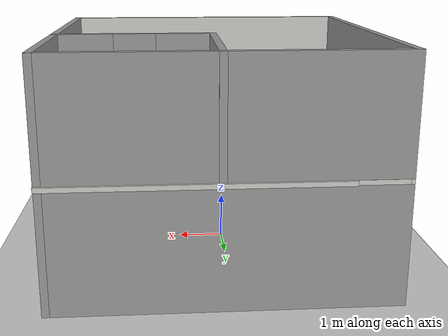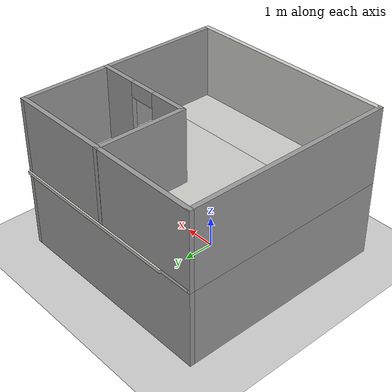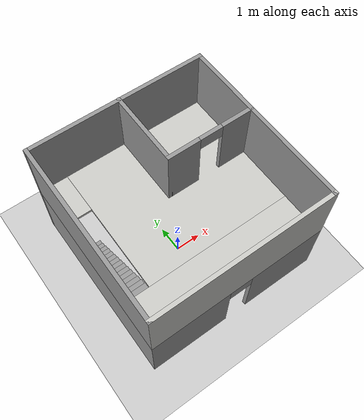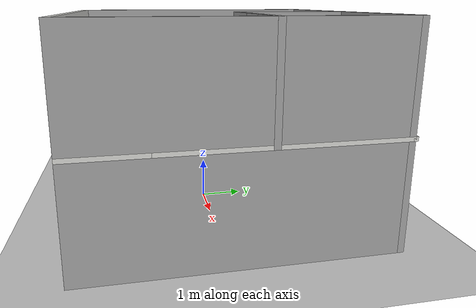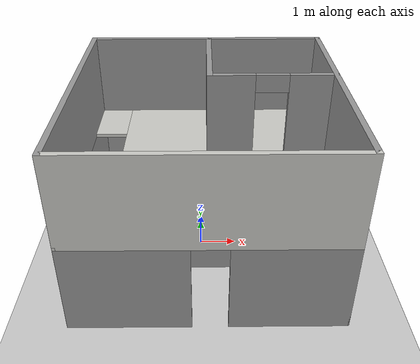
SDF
<sdf version="1.6">
 <world name="default">
  <light name="sun" type="directional">
   <pose>0 0 10 0 -0 0</pose>
   <diffuse>0.8 0.8 0.8 1</diffuse>
   <specular>0.1 0.1 0.1 1</specular>
   <attenuation>
    <range>1000</range>
    <constant>0.9</constant>
    <linear>0.01</linear>
    <quadratic>0.001</quadratic>
   </attenuation>
   <direction>-0.5 0.5 -1</direction>
  </light>
  <model name="ground_plane">
   <static>1</static>
   <link name="link">
    <collision name="collision">
     <geometry><plane><normal>0 0 1</normal><size>100 100</size></plane></geometry>
     <surface><friction><ode><mu>100</mu><mu2>50</mu2></ode></friction></surface>
    </collision>
    <visual name="visual">
     <cast_shadows>0</cast_shadows>
     <geometry><plane><normal>0 0 1</normal><size>100 100</size></plane></geometry>
     <material>
      <script><uri>file://media/materials/scripts/gazebo.material</uri><name>Gazebo/Grey</name></script>
     </material>
    </visual>
   </link>
  </model>
  <gravity>0 0 -9.8</gravity>
  <magnetic_field>6e-06 2.3e-05 -4.2e-05</magnetic_field>
  <atmosphere type="adiabatic"/>
  <physics name="default_physics" default="0" type="ode">
   <max_step_size>0.001</max_step_size>
   <real_time_factor>1</real_time_factor>
   <real_time_update_rate>1000</real_time_update_rate>
  </physics>
  <scene><ambient>0.4 0.4 0.4 1</ambient><background>0.7 0.7 0.7 1</background><shadows>1</shadows></scene>
  <spherical_coordinates>
   <surface_model>EARTH_WGS84</surface_model>
   <latitude_deg>0</latitude_deg>
   <longitude_deg>0</longitude_deg>
   <elevation>0</elevation>
   <heading_deg>0</heading_deg>
  </spherical_coordinates>
  <model name="Square_Building">
   <pose>0.185076 0.271864 0 0 -0 0</pose>
   <link name="Floor_1">
    <pose>0 0 2.5 0 -0 0</pose>
    <visual name="Floor_1_Visual_0">
     <pose>-3.46049 0 0.05 0 -0 0</pose>
     <geometry><box><size>0.079016 7.0068 0.1</size></box></geometry>
     <material>
      <script><uri>file://media/materials/scripts/gazebo.material</uri><name>Gazebo/CeilingTiled</name></script>
      <ambient>1 0.764706 0.305882 1</ambient>
     </material>
    </visual>
    <collision name="Floor_1_Collision_0">
     <geometry><box><size>0.079016 7.0068 0.1</size></box></geometry>
     <pose>-3.46049 0 0.05 0 -0 0</pose>
    </collision>
    <visual name="Floor_1_Visual_1">
     <pose>0.039508 -2.65084 0.05 0 -0 0</pose>
     <geometry><box><size>6.92098 1.70511 0.1</size></box></geometry>
     <material>
      <script><uri>file://media/materials/scripts/gazebo.material</uri><name>Gazebo/CeilingTiled</name></script>
      <ambient>1 0.764706 0.305882 1</ambient>
     </material>
    </visual>
    <collision name="Floor_1_Collision_1">
     <geometry><box><size>6.92098 1.70511 0.1</size></box></geometry>
     <pose>0.039508 -2.65084 0.05 0 -0 0</pose>
    </collision>
    <visual name="Floor_1_Visual_2">
     <pose>0.539508 0.852556 0.05 0 -0 0</pose>
     <geometry><box><size>5.92098 5.30168 0.1</size></box></geometry>
     <material>
      <script><uri>file://media/materials/scripts/gazebo.material</uri><name>Gazebo/CeilingTiled</name></script>
      <ambient>1 0.764706 0.305882 1</ambient>
     </material>
    </visual>
    <collision name="Floor_1_Collision_2">
     <geometry><box><size>5.92098 5.30168 0.1</size></box></geometry>
     <pose>0.539508 0.852556 0.05 0 -0 0</pose>
    </collision>
    <visual name="Floor_1_Visual_3">
     <pose>-2.92098 2.60256 0.05 0 -0 0</pose>
     <geometry><box><size>1 1.80168 0.1</size></box></geometry>
     <material>
      <script><uri>file://media/materials/scripts/gazebo.material</uri><name>Gazebo/CeilingTiled</name></script>
      <ambient>1 0.764706 0.305882 1</ambient>
     </material>
    </visual>
    <collision name="Floor_1_Collision_3">
     <geometry><box><size>1 1.80168 0.1</size></box></geometry>
     <pose>-2.92098 2.60256 0.05 0 -0 0</pose>
    </collision>
    <visual name="Floor_1_Visual_4">
     <pose>0.539508 3.5034 0.05 0 -0 0</pose>
     <geometry><box><size>5.92098 0.1 0.1</size></box></geometry>
     <material>
      <script><uri>file://media/materials/scripts/gazebo.material</uri><name>Gazebo/CeilingTiled</name></script>
      <ambient>1 0.764706 0.305882 1</ambient>
     </material>
    </visual>
    <collision name="Floor_1_Collision_4">
     <geometry><box><size>5.92098 0.1 0.1</size></box></geometry>
     <pose>0.539508 3.5034 0.05 0 -0 0</pose>
    </collision>
   </link>
   <link name="Stairs_1">
    <visual name="Stairs_1_Visual_0">
     <pose>-2.92098 1.58505 0.083333 0 -0 0</pose>
     <geometry><box><size>1 0.233333 0.166667</size></box></geometry>
     <material>
      <script><uri>file://media/materials/scripts/gazebo.material</uri><name>Gazebo/Grey</name></script>
      <ambient>1 1 1 1</ambient>
     </material>
    </visual>
    <collision name="Stairs_1_Collision_0">
     <geometry><box><size>1 0.233333 0.166667</size></box></geometry>
     <pose>-2.92098 1.58505 0.083333 0 -0 0</pose>
    </collision>
    <visual name="Stairs_1_Visual_1">
     <pose>-2.92098 1.35171 0.25 0 -0 0</pose>
     <geometry><box><size>1 0.233333 0.166667</size></box></geometry>
     <material>
      <script><uri>file://media/materials/scripts/gazebo.material</uri><name>Gazebo/Grey</name></script>
      <ambient>1 1 1 1</ambient>
     </material>
    </visual>
    <collision name="Stairs_1_Collision_1">
     <geometry><box><size>1 0.233333 0.166667</size></box></geometry>
     <pose>-2.92098 1.35171 0.25 0 -0 0</pose>
    </collision>
    <visual name="Stairs_1_Visual_2">
     <pose>-2.92098 1.11838 0.416667 0 -0 0</pose>
     <geometry><box><size>1 0.233333 0.166667</size></box></geometry>
     <material>
      <script><uri>file://media/materials/scripts/gazebo.material</uri><name>Gazebo/Grey</name></script>
      <ambient>1 1 1 1</ambient>
     </material>
    </visual>
    <collision name="Stairs_1_Collision_2">
     <geometry><box><size>1 0.233333 0.166667</size></box></geometry>
     <pose>-2.92098 1.11838 0.416667 0 -0 0</pose>
    </collision>
    <visual name="Stairs_1_Visual_3">
     <pose>-2.92098 0.885047 0.583333 0 -0 0</pose>
     <geometry><box><size>1 0.233333 0.166667</size></box></geometry>
     <material>
      <script><uri>file://media/materials/scripts/gazebo.material</uri><name>Gazebo/Grey</name></script>
      <ambient>1 1 1 1</ambient>
     </material>
    </visual>
    <collision name="Stairs_1_Collision_3">
     <geometry><box><size>1 0.233333 0.166667</size></box></geometry>
     <pose>-2.92098 0.885047 0.583333 0 -0 0</pose>
    </collision>
    <visual name="Stairs_1_Visual_4">
     <pose>-2.92098 0.651714 0.75 0 -0 0</pose>
     <geometry><box><size>1 0.233333 0.166667</size></box></geometry>
     <material>
      <script><uri>file://media/materials/scripts/gazebo.material</uri><name>Gazebo/Grey</name></script>
      <ambient>1 1 1 1</ambient>
     </material>
    </visual>
    <collision name="Stairs_1_Collision_4">
     <geometry><box><size>1 0.233333 0.166667</size></box></geometry>
     <pose>-2.92098 0.651714 0.75 0 -0 0</pose>
    </collision>
    <visual name="Stairs_1_Visual_5">
     <pose>-2.92098 0.41838 0.916667 0 -0 0</pose>
     <geometry><box><size>1 0.233333 0.166667</size></box></geometry>
     <material>
      <script><uri>file://media/materials/scripts/gazebo.material</uri><name>Gazebo/Grey</name></script>
      <ambient>1 1 1 1</ambient>
     </material>
    </visual>
    <collision name="Stairs_1_Collision_5">
     <geometry><box><size>1 0.233333 0.166667</size></box></geometry>
     <pose>-2.92098 0.41838 0.916667 0 -0 0</pose>
    </collision>
    <visual name="Stairs_1_Visual_6">
     <pose>-2.92098 0.185047 1.08333 0 -0 0</pose>
     <geometry><box><size>1 0.233333 0.166667</size></box></geometry>
     <material>
      <script><uri>file://media/materials/scripts/gazebo.material</uri><name>Gazebo/Grey</name></script>
      <ambient>1 1 1 1</ambient>
     </material>
    </visual>
    <collision name="Stairs_1_Collision_6">
     <geometry><box><size>1 0.233333 0.166667</size></box></geometry>
     <pose>-2.92098 0.185047 1.08333 0 -0 0</pose>
    </collision>
    <visual name="Stairs_1_Visual_7">
     <pose>-2.92098 -0.048286 1.25 0 -0 0</pose>
     <geometry><box><size>1 0.233333 0.166667</size></box></geometry>
     <material>
      <script><uri>file://media/materials/scripts/gazebo.material</uri><name>Gazebo/Grey</name></script>
      <ambient>1 1 1 1</ambient>
     </material>
    </visual>
    <collision name="Stairs_1_Collision_7">
     <geometry><box><size>1 0.233333 0.166667</size></box></geometry>
     <pose>-2.92098 -0.048286 1.25 0 -0 0</pose>
    </collision>
    <visual name="Stairs_1_Visual_8">
     <pose>-2.92098 -0.28162 1.41667 0 -0 0</pose>
     <geometry><box><size>1 0.233333 0.166667</size></box></geometry>
     <material>
      <script><uri>file://media/materials/scripts/gazebo.material</uri><name>Gazebo/Grey</name></script>
      <ambient>1 1 1 1</ambient>
     </material>
    </visual>
    <collision name="Stairs_1_Collision_8">
     <geometry><box><size>1 0.233333 0.166667</size></box></geometry>
     <pose>-2.92098 -0.28162 1.41667 0 -0 0</pose>
    </collision>
    <visual name="Stairs_1_Visual_9">
     <pose>-2.92098 -0.514953 1.58333 0 -0 0</pose>
     <geometry><box><size>1 0.233333 0.166667</size></box></geometry>
     <material>
      <script><uri>file://media/materials/scripts/gazebo.material</uri><name>Gazebo/Grey</name></script>
      <ambient>1 1 1 1</ambient>
     </material>
    </visual>
    <collision name="Stairs_1_Collision_9">
     <geometry><box><size>1 0.233333 0.166667</size></box></geometry>
     <pose>-2.92098 -0.514953 1.58333 0 -0 0</pose>
    </collision>
    <visual name="Stairs_1_Visual_10">
     <pose>-2.92098 -0.748286 1.75 0 -0 0</pose>
     <geometry><box><size>1 0.233333 0.166667</size></box></geometry>
     <material>
      <script><uri>file://media/materials/scripts/gazebo.material</uri><name>Gazebo/Grey</name></script>
      <ambient>1 1 1 1</ambient>
     </material>
    </visual>
    <collision name="Stairs_1_Collision_10">
     <geometry><box><size>1 0.233333 0.166667</size></box></geometry>
     <pose>-2.92098 -0.748286 1.75 0 -0 0</pose>
    </collision>
    <visual name="Stairs_1_Visual_11">
     <pose>-2.92098 -0.98162 1.91667 0 -0 0</pose>
     <geometry><box><size>1 0.233333 0.166667</size></box></geometry>
     <material>
      <script><uri>file://media/materials/scripts/gazebo.material</uri><name>Gazebo/Grey</name></script>
      <ambient>1 1 1 1</ambient>
     </material>
    </visual>
    <collision name="Stairs_1_Collision_11">
     <geometry><box><size>1 0.233333 0.166667</size></box></geometry>
     <pose>-2.92098 -0.98162 1.91667 0 -0 0</pose>
    </collision>
    <visual name="Stairs_1_Visual_12">
     <pose>-2.92098 -1.21495 2.08333 0 -0 0</pose>
     <geometry><box><size>1 0.233333 0.166667</size></box></geometry>
     <material>
      <script><uri>file://media/materials/scripts/gazebo.material</uri><name>Gazebo/Grey</name></script>
      <ambient>1 1 1 1</ambient>
     </material>
    </visual>
    <collision name="Stairs_1_Collision_12">
     <geometry><box><size>1 0.233333 0.166667</size></box></geometry>
     <pose>-2.92098 -1.21495 2.08333 0 -0 0</pose>
    </collision>
    <visual name="Stairs_1_Visual_13">
     <pose>-2.92098 -1.44829 2.25 0 -0 0</pose>
     <geometry><box><size>1 0.233333 0.166667</size></box></geometry>
     <material>
      <script><uri>file://media/materials/scripts/gazebo.material</uri><name>Gazebo/Grey</name></script>
      <ambient>1 1 1 1</ambient>
     </material>
    </visual>
    <collision name="Stairs_1_Collision_13">
     <geometry><box><size>1 0.233333 0.166667</size></box></geometry>
     <pose>-2.92098 -1.44829 2.25 0 -0 0</pose>
    </collision>
    <visual name="Stairs_1_Visual_14">
     <pose>-2.92098 -1.68162 2.41667 0 -0 0</pose>
     <geometry><box><size>1 0.233333 0.166667</size></box></geometry>
     <material>
      <script><uri>file://media/materials/scripts/gazebo.material</uri><name>Gazebo/Grey</name></script>
      <ambient>1 1 1 1</ambient>
     </material>
    </visual>
    <collision name="Stairs_1_Collision_14">
     <geometry><box><size>1 0.233333 0.166667</size></box></geometry>
     <pose>-2.92098 -1.68162 2.41667 0 -0 0</pose>
    </collision>
   </link>
   <link name="Wall_11">
    <collision name="Wall_11_Collision">
     <geometry><box><size>7 0.15 2.5</size></box></geometry>
     <pose>0 0 1.25 0 -0 0</pose>
    </collision>
    <visual name="Wall_11_Visual">
     <pose>0 0 1.25 0 -0 0</pose>
     <geometry><box><size>7 0.15 2.5</size></box></geometry>
     <material>
      <script><uri>file://media/materials/scripts/gazebo.material</uri><name>Gazebo/Grey</name></script>
      <ambient>1 1 1 1</ambient>
     </material>
    </visual>
    <pose>3.42482 -0.003399 0 0 -0 1.5708</pose>
   </link>
   <link name="Wall_12">
    <collision name="Wall_12_Collision">
     <geometry><box><size>7 0.15 2.5</size></box></geometry>
     <pose>0 0 1.25 0 -0 0</pose>
    </collision>
    <visual name="Wall_12_Visual">
     <pose>0 0 1.25 0 -0 0</pose>
     <geometry><box><size>7 0.15 2.5</size></box></geometry>
     <material>
      <script><uri>file://media/materials/scripts/gazebo.material</uri><name>Gazebo/Grey</name></script>
      <ambient>1 1 1 1</ambient>
     </material>
    </visual>
    <pose>-0.000183 3.4216 0 0 -0 3.14159</pose>
   </link>
   <link name="Wall_13">
    <collision name="Wall_13_Collision">
     <geometry><box><size>7 0.15 2.5</size></box></geometry>
     <pose>0 0 1.25 0 -0 0</pose>
    </collision>
    <visual name="Wall_13_Visual">
     <pose>0 0 1.25 0 -0 0</pose>
     <geometry><box><size>7 0.15 2.5</size></box></geometry>
     <material>
      <script><uri>file://media/materials/scripts/gazebo.material</uri><name>Gazebo/Grey</name></script>
      <ambient>1 1 1 1</ambient>
     </material>
    </visual>
    <pose>-3.42518 -0.003399 0 0 0 -1.5708</pose>
   </link>
   <link name="Wall_19">
    <collision name="Wall_19_Collision">
     <geometry><box><size>7 0.15 2.5</size></box></geometry>
     <pose>0 0 1.25 0 -0 0</pose>
    </collision>
    <visual name="Wall_19_Visual">
     <pose>0 0 1.25 0 -0 0</pose>
     <geometry><box><size>7 0.15 2.5</size></box></geometry>
     <material>
      <script><uri>file://media/materials/scripts/gazebo.material</uri><name>Gazebo/CeilingTiled</name></script>
      <ambient>1 1 1 1</ambient>
     </material>
    </visual>
    <pose>-0.000183 -3.4284 2.5 0 -0 0</pose>
   </link>
   <link name="Wall_20">
    <collision name="Wall_20_Collision">
     <geometry><box><size>7 0.15 2.5</size></box></geometry>
     <pose>0 0 1.25 0 -0 0</pose>
    </collision>
    <visual name="Wall_20_Visual">
     <pose>0 0 1.25 0 -0 0</pose>
     <geometry><box><size>7 0.15 2.5</size></box></geometry>
     <material>
      <script><uri>file://media/materials/scripts/gazebo.material</uri><name>Gazebo/Grey</name></script>
      <ambient>1 1 1 1</ambient>
     </material>
    </visual>
    <pose>3.42482 -0.003399 2.5 0 -0 1.5708</pose>
   </link>
   <link name="Wall_21">
    <collision name="Wall_21_Collision">
     <geometry><box><size>7 0.15 2.5</size></box></geometry>
     <pose>0 0 1.25 0 -0 0</pose>
    </collision>
    <visual name="Wall_21_Visual">
     <pose>0 0 1.25 0 -0 0</pose>
     <geometry><box><size>7 0.15 2.5</size></box></geometry>
     <material>
      <script><uri>file://media/materials/scripts/gazebo.material</uri><name>Gazebo/Grey</name></script>
      <ambient>1 1 1 1</ambient>
     </material>
    </visual>
    <pose>-0.000183 3.4216 2.5 0 -0 3.14159</pose>
   </link>
   <link name="Wall_22">
    <collision name="Wall_22_Collision">
     <geometry><box><size>7 0.15 2.5</size></box></geometry>
     <pose>0 0 1.25 0 -0 0</pose>
    </collision>
    <visual name="Wall_22_Visual">
     <pose>0 0 1.25 0 -0 0</pose>
     <geometry><box><size>7 0.15 2.5</size></box></geometry>
     <material>
      <script><uri>file://media/materials/scripts/gazebo.material</uri><name>Gazebo/Grey</name></script>
      <ambient>1 1 1 1</ambient>
     </material>
    </visual>
    <pose>-3.42518 -0.003399 2.5 0 0 -1.5708</pose>
   </link>
   <link name="Wall_23">
    <collision name="Wall_23_Collision">
     <geometry><box><size>3 0.15 2.5</size></box></geometry>
     <pose>0 0 1.25 0 -0 0</pose>
    </collision>
    <visual name="Wall_23_Visual">
     <pose>0 0 1.25 0 -0 0</pose>
     <geometry><box><size>3 0.15 2.5</size></box></geometry>
     <material>
      <script><uri>file://media/materials/scripts/gazebo.material</uri><name>Gazebo/Grey</name></script>
      <ambient>1 1 1 1</ambient>
     </material>
    </visual>
    <pose>0.075183 2.0034 2.5 0 0 -1.5708</pose>
   </link>
   <link name="Wall_24">
    <pose>1.75018 0.578399 2.5 0 -0 0</pose>
    <visual name="Wall_24_Visual_0">
     <pose>-1.10366 0 1.25 0 -0 0</pose>
     <geometry><box><size>1.29268 0.15 2.5</size></box></geometry>
     <material>
      <script><uri>file://media/materials/scripts/gazebo.material</uri><name>Gazebo/Grey</name></script>
      <ambient>1 1 1 1</ambient>
     </material>
    </visual>
    <collision name="Wall_24_Collision_0">
     <geometry><box><size>1.29268 0.15 2.5</size></box></geometry>
     <pose>-1.10366 0 1.25 0 -0 0</pose>
    </collision>
    <visual name="Wall_24_Visual_1">
     <pose>1.09634 0 1.25 0 -0 0</pose>
     <geometry><box><size>1.30732 0.15 2.5</size></box></geometry>
     <material>
      <script><uri>file://media/materials/scripts/gazebo.material</uri><name>Gazebo/Grey</name></script>
      <ambient>1 1 1 1</ambient>
     </material>
    </visual>
    <collision name="Wall_24_Collision_1">
     <geometry><box><size>1.30732 0.15 2.5</size></box></geometry>
     <pose>1.09634 0 1.25 0 -0 0</pose>
    </collision>
    <visual name="Wall_24_Visual_2">
     <pose>-0.007322 0 2.25 0 -0 0</pose>
     <geometry><box><size>0.9 0.15 0.5</size></box></geometry>
     <material>
      <script><uri>file://media/materials/scripts/gazebo.material</uri><name>Gazebo/Grey</name></script>
      <ambient>1 1 1 1</ambient>
     </material>
    </visual>
    <collision name="Wall_24_Collision_2">
     <geometry><box><size>0.9 0.15 0.5</size></box></geometry>
     <pose>-0.007322 0 2.25 0 -0 0</pose>
    </collision>
   </link>
   <link name="Wall_8">
    <pose>-0.000183 -3.4284 0 0 -0 0</pose>
    <visual name="Wall_8_Visual_0">
     <pose>-1.95145 0 1.25 0 -0 0</pose>
     <geometry><box><size>3.0971 0.15 2.5</size></box></geometry>
     <material>
      <script><uri>file://media/materials/scripts/gazebo.material</uri><name>Gazebo/Grey</name></script>
      <ambient>1 1 1 1</ambient>
     </material>
    </visual>
    <collision name="Wall_8_Collision_0">
     <geometry><box><size>3.0971 0.15 2.5</size></box></geometry>
     <pose>-1.95145 0 1.25 0 -0 0</pose>
    </collision>
    <visual name="Wall_8_Visual_1">
     <pose>1.99855 0 1.25 0 -0 0</pose>
     <geometry><box><size>3.0029 0.15 2.5</size></box></geometry>
     <material>
      <script><uri>file://media/materials/scripts/gazebo.material</uri><name>Gazebo/Grey</name></script>
      <ambient>1 1 1 1</ambient>
     </material>
    </visual>
    <collision name="Wall_8_Collision_1">
     <geometry><box><size>3.0029 0.15 2.5</size></box></geometry>
     <pose>1.99855 0 1.25 0 -0 0</pose>
    </collision>
    <visual name="Wall_8_Visual_2">
     <pose>0.047101 0 2.25 0 -0 0</pose>
     <geometry><box><size>0.9 0.15 0.5</size></box></geometry>
     <material>
      <script><uri>file://media/materials/scripts/gazebo.material</uri><name>Gazebo/Grey</name></script>
      <ambient>1 1 1 1</ambient>
     </material>
    </visual>
    <collision name="Wall_8_Collision_2">
     <geometry><box><size>0.9 0.15 0.5</size></box></geometry>
     <pose>0.047101 0 2.25 0 -0 0</pose>
    </collision>
   </link>
   <static>1</static>
  </model>
 </world>
</sdf>
